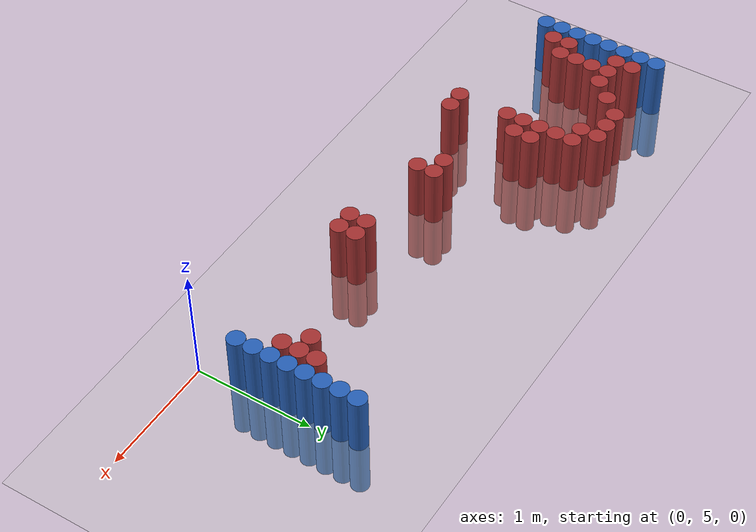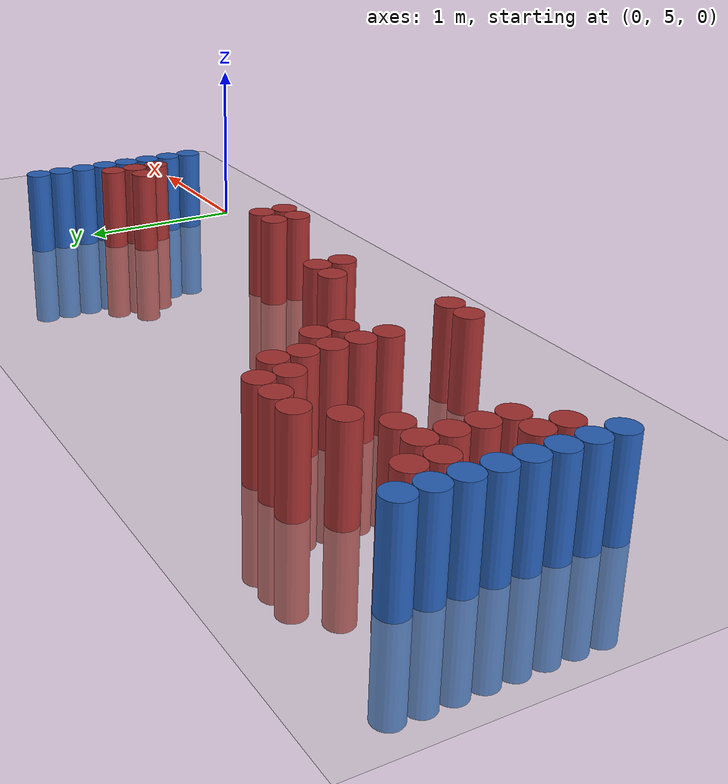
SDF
<sdf version="1.6">
 <world name="default">
  <model name="ground_plane">
   <static>1</static>
   <link name="link">
    <collision name="collision">
     <geometry><plane><normal>0 0 1</normal><size>100 100</size></plane></geometry>
     <surface><friction><ode><mu>100</mu><mu2>50</mu2></ode></friction></surface>
    </collision>
    <visual name="visual">
     <cast_shadows>0</cast_shadows>
     <geometry><plane><normal>0 0 1</normal><size>100 100</size></plane></geometry>
     <material>
      <script><uri>file://media/materials/scripts/gazebo.material</uri><name>Gazebo/Grey</name></script>
     </material>
    </visual>
   </link>
  </model>
  <model name="unit_cylinder_98">
   <static>1</static>
   <pose>-4.425000 5.475000 0.000000 0.000000 0.000000 0.000000</pose>
   <link name="link">
    <inertial>
     <mass>1</mass>
     <inertia><ixx>0.145833</ixx><ixy>0</ixy><ixz>0</ixz><iyy>0.145833</iyy><iyz>0</iyz><izz>0.125</izz></inertia>
    </inertial>
    <collision name="collision">
     <geometry><cylinder><radius>0.075000</radius><length>1</length></cylinder></geometry>
    </collision>
    <visual name="visual">
     <geometry><cylinder><radius>0.075000</radius><length>1</length></cylinder></geometry>
     <material>
      <ambient>0.152000 0.379000 0.720000 1</ambient>
      <diffuse>0.152000 0.379000 0.720000 1</diffuse>
     </material>
     <material>
      <script><name>Gazebo/Grey</name><uri>file://media/materials/scripts/gazebo.material</uri></script>
     </material>
    </visual>
   </link>
  </model>
  <model name="unit_cylinder_99">
   <static>1</static>
   <pose>-4.425000 5.625000 0.000000 0.000000 0.000000 0.000000</pose>
   <link name="link">
    <inertial>
     <mass>1</mass>
     <inertia><ixx>0.145833</ixx><ixy>0</ixy><ixz>0</ixz><iyy>0.145833</iyy><iyz>0</iyz><izz>0.125</izz></inertia>
    </inertial>
    <collision name="collision">
     <geometry><cylinder><radius>0.075000</radius><length>1</length></cylinder></geometry>
    </collision>
    <visual name="visual">
     <geometry><cylinder><radius>0.075000</radius><length>1</length></cylinder></geometry>
     <material>
      <ambient>0.152000 0.379000 0.720000 1</ambient>
      <diffuse>0.152000 0.379000 0.720000 1</diffuse>
     </material>
     <material>
      <script><name>Gazebo/Grey</name><uri>file://media/materials/scripts/gazebo.material</uri></script>
     </material>
    </visual>
   </link>
  </model>
  <model name="unit_cylinder_100">
   <static>1</static>
   <pose>-4.425000 5.775000 0.000000 0.000000 0.000000 0.000000</pose>
   <link name="link">
    <inertial>
     <mass>1</mass>
     <inertia><ixx>0.145833</ixx><ixy>0</ixy><ixz>0</ixz><iyy>0.145833</iyy><iyz>0</iyz><izz>0.125</izz></inertia>
    </inertial>
    <collision name="collision">
     <geometry><cylinder><radius>0.075000</radius><length>1</length></cylinder></geometry>
    </collision>
    <visual name="visual">
     <geometry><cylinder><radius>0.075000</radius><length>1</length></cylinder></geometry>
     <material>
      <ambient>0.152000 0.379000 0.720000 1</ambient>
      <diffuse>0.152000 0.379000 0.720000 1</diffuse>
     </material>
     <material>
      <script><name>Gazebo/Grey</name><uri>file://media/materials/scripts/gazebo.material</uri></script>
     </material>
    </visual>
   </link>
  </model>
  <model name="unit_cylinder_101">
   <static>1</static>
   <pose>-4.425000 5.925000 0.000000 0.000000 0.000000 0.000000</pose>
   <link name="link">
    <inertial>
     <mass>1</mass>
     <inertia><ixx>0.145833</ixx><ixy>0</ixy><ixz>0</ixz><iyy>0.145833</iyy><iyz>0</iyz><izz>0.125</izz></inertia>
    </inertial>
    <collision name="collision">
     <geometry><cylinder><radius>0.075000</radius><length>1</length></cylinder></geometry>
    </collision>
    <visual name="visual">
     <geometry><cylinder><radius>0.075000</radius><length>1</length></cylinder></geometry>
     <material>
      <ambient>0.152000 0.379000 0.720000 1</ambient>
      <diffuse>0.152000 0.379000 0.720000 1</diffuse>
     </material>
     <material>
      <script><name>Gazebo/Grey</name><uri>file://media/materials/scripts/gazebo.material</uri></script>
     </material>
    </visual>
   </link>
  </model>
  <model name="unit_cylinder_102">
   <static>1</static>
   <pose>-4.425000 6.075000 0.000000 0.000000 0.000000 0.000000</pose>
   <link name="link">
    <inertial>
     <mass>1</mass>
     <inertia><ixx>0.145833</ixx><ixy>0</ixy><ixz>0</ixz><iyy>0.145833</iyy><iyz>0</iyz><izz>0.125</izz></inertia>
    </inertial>
    <collision name="collision">
     <geometry><cylinder><radius>0.075000</radius><length>1</length></cylinder></geometry>
    </collision>
    <visual name="visual">
     <geometry><cylinder><radius>0.075000</radius><length>1</length></cylinder></geometry>
     <material>
      <ambient>0.152000 0.379000 0.720000 1</ambient>
      <diffuse>0.152000 0.379000 0.720000 1</diffuse>
     </material>
     <material>
      <script><name>Gazebo/Grey</name><uri>file://media/materials/scripts/gazebo.material</uri></script>
     </material>
    </visual>
   </link>
  </model>
  <model name="unit_cylinder_103">
   <static>1</static>
   <pose>-4.425000 6.225000 0.000000 0.000000 0.000000 0.000000</pose>
   <link name="link">
    <inertial>
     <mass>1</mass>
     <inertia><ixx>0.145833</ixx><ixy>0</ixy><ixz>0</ixz><iyy>0.145833</iyy><iyz>0</iyz><izz>0.125</izz></inertia>
    </inertial>
    <collision name="collision">
     <geometry><cylinder><radius>0.075000</radius><length>1</length></cylinder></geometry>
    </collision>
    <visual name="visual">
     <geometry><cylinder><radius>0.075000</radius><length>1</length></cylinder></geometry>
     <material>
      <ambient>0.152000 0.379000 0.720000 1</ambient>
      <diffuse>0.152000 0.379000 0.720000 1</diffuse>
     </material>
     <material>
      <script><name>Gazebo/Grey</name><uri>file://media/materials/scripts/gazebo.material</uri></script>
     </material>
    </visual>
   </link>
  </model>
  <model name="unit_cylinder_104">
   <static>1</static>
   <pose>-4.425000 6.375000 0.000000 0.000000 0.000000 0.000000</pose>
   <link name="link">
    <inertial>
     <mass>1</mass>
     <inertia><ixx>0.145833</ixx><ixy>0</ixy><ixz>0</ixz><iyy>0.145833</iyy><iyz>0</iyz><izz>0.125</izz></inertia>
    </inertial>
    <collision name="collision">
     <geometry><cylinder><radius>0.075000</radius><length>1</length></cylinder></geometry>
    </collision>
    <visual name="visual">
     <geometry><cylinder><radius>0.075000</radius><length>1</length></cylinder></geometry>
     <material>
      <ambient>0.152000 0.379000 0.720000 1</ambient>
      <diffuse>0.152000 0.379000 0.720000 1</diffuse>
     </material>
     <material>
      <script><name>Gazebo/Grey</name><uri>file://media/materials/scripts/gazebo.material</uri></script>
     </material>
    </visual>
   </link>
  </model>
  <model name="unit_cylinder_105">
   <static>1</static>
   <pose>-4.425000 6.525000 0.000000 0.000000 0.000000 0.000000</pose>
   <link name="link">
    <inertial>
     <mass>1</mass>
     <inertia><ixx>0.145833</ixx><ixy>0</ixy><ixz>0</ixz><iyy>0.145833</iyy><iyz>0</iyz><izz>0.125</izz></inertia>
    </inertial>
    <collision name="collision">
     <geometry><cylinder><radius>0.075000</radius><length>1</length></cylinder></geometry>
    </collision>
    <visual name="visual">
     <geometry><cylinder><radius>0.075000</radius><length>1</length></cylinder></geometry>
     <material>
      <ambient>0.152000 0.379000 0.720000 1</ambient>
      <diffuse>0.152000 0.379000 0.720000 1</diffuse>
     </material>
     <material>
      <script><name>Gazebo/Grey</name><uri>file://media/materials/scripts/gazebo.material</uri></script>
     </material>
    </visual>
   </link>
  </model>
  <model name="unit_cylinder_126">
   <static>1</static>
   <pose>-4.275000 5.625000 0.000000 0.000000 0.000000 0.000000</pose>
   <link name="link">
    <inertial>
     <mass>1</mass>
     <inertia><ixx>0.145833</ixx><ixy>0</ixy><ixz>0</ixz><iyy>0.145833</iyy><iyz>0</iyz><izz>0.125</izz></inertia>
    </inertial>
    <collision name="collision">
     <geometry><cylinder><radius>0.075000</radius><length>1</length></cylinder></geometry>
    </collision>
    <visual name="visual">
     <geometry><cylinder><radius>0.075000</radius><length>1</length></cylinder></geometry>
     <material>
      <ambient>0.648000 0.192000 0.192000 1</ambient>
      <diffuse>0.648000 0.192000 0.192000 1</diffuse>
     </material>
     <material>
      <script><name>Gazebo/Grey</name><uri>file://media/materials/scripts/gazebo.material</uri></script>
     </material>
    </visual>
   </link>
  </model>
  <model name="unit_cylinder_127">
   <static>1</static>
   <pose>-4.275000 5.775000 0.000000 0.000000 0.000000 0.000000</pose>
   <link name="link">
    <inertial>
     <mass>1</mass>
     <inertia><ixx>0.145833</ixx><ixy>0</ixy><ixz>0</ixz><iyy>0.145833</iyy><iyz>0</iyz><izz>0.125</izz></inertia>
    </inertial>
    <collision name="collision">
     <geometry><cylinder><radius>0.075000</radius><length>1</length></cylinder></geometry>
    </collision>
    <visual name="visual">
     <geometry><cylinder><radius>0.075000</radius><length>1</length></cylinder></geometry>
     <material>
      <ambient>0.648000 0.192000 0.192000 1</ambient>
      <diffuse>0.648000 0.192000 0.192000 1</diffuse>
     </material>
     <material>
      <script><name>Gazebo/Grey</name><uri>file://media/materials/scripts/gazebo.material</uri></script>
     </material>
    </visual>
   </link>
  </model>
  <model name="unit_cylinder_128">
   <static>1</static>
   <pose>-4.275000 6.225000 0.000000 0.000000 0.000000 0.000000</pose>
   <link name="link">
    <inertial>
     <mass>1</mass>
     <inertia><ixx>0.145833</ixx><ixy>0</ixy><ixz>0</ixz><iyy>0.145833</iyy><iyz>0</iyz><izz>0.125</izz></inertia>
    </inertial>
    <collision name="collision">
     <geometry><cylinder><radius>0.075000</radius><length>1</length></cylinder></geometry>
    </collision>
    <visual name="visual">
     <geometry><cylinder><radius>0.075000</radius><length>1</length></cylinder></geometry>
     <material>
      <ambient>0.648000 0.192000 0.192000 1</ambient>
      <diffuse>0.648000 0.192000 0.192000 1</diffuse>
     </material>
     <material>
      <script><name>Gazebo/Grey</name><uri>file://media/materials/scripts/gazebo.material</uri></script>
     </material>
    </visual>
   </link>
  </model>
  <model name="unit_cylinder_129">
   <static>1</static>
   <pose>-4.275000 6.375000 0.000000 0.000000 0.000000 0.000000</pose>
   <link name="link">
    <inertial>
     <mass>1</mass>
     <inertia><ixx>0.145833</ixx><ixy>0</ixy><ixz>0</ixz><iyy>0.145833</iyy><iyz>0</iyz><izz>0.125</izz></inertia>
    </inertial>
    <collision name="collision">
     <geometry><cylinder><radius>0.075000</radius><length>1</length></cylinder></geometry>
    </collision>
    <visual name="visual">
     <geometry><cylinder><radius>0.075000</radius><length>1</length></cylinder></geometry>
     <material>
      <ambient>0.648000 0.192000 0.192000 1</ambient>
      <diffuse>0.648000 0.192000 0.192000 1</diffuse>
     </material>
     <material>
      <script><name>Gazebo/Grey</name><uri>file://media/materials/scripts/gazebo.material</uri></script>
     </material>
    </visual>
   </link>
  </model>
  <model name="unit_cylinder_139">
   <static>1</static>
   <pose>-4.125000 5.775000 0.000000 0.000000 0.000000 0.000000</pose>
   <link name="link">
    <inertial>
     <mass>1</mass>
     <inertia><ixx>0.145833</ixx><ixy>0</ixy><ixz>0</ixz><iyy>0.145833</iyy><iyz>0</iyz><izz>0.125</izz></inertia>
    </inertial>
    <collision name="collision">
     <geometry><cylinder><radius>0.075000</radius><length>1</length></cylinder></geometry>
    </collision>
    <visual name="visual">
     <geometry><cylinder><radius>0.075000</radius><length>1</length></cylinder></geometry>
     <material>
      <ambient>0.648000 0.192000 0.192000 1</ambient>
      <diffuse>0.648000 0.192000 0.192000 1</diffuse>
     </material>
     <material>
      <script><name>Gazebo/Grey</name><uri>file://media/materials/scripts/gazebo.material</uri></script>
     </material>
    </visual>
   </link>
  </model>
  <model name="unit_cylinder_140">
   <static>1</static>
   <pose>-4.125000 5.925000 0.000000 0.000000 0.000000 0.000000</pose>
   <link name="link">
    <inertial>
     <mass>1</mass>
     <inertia><ixx>0.145833</ixx><ixy>0</ixy><ixz>0</ixz><iyy>0.145833</iyy><iyz>0</iyz><izz>0.125</izz></inertia>
    </inertial>
    <collision name="collision">
     <geometry><cylinder><radius>0.075000</radius><length>1</length></cylinder></geometry>
    </collision>
    <visual name="visual">
     <geometry><cylinder><radius>0.075000</radius><length>1</length></cylinder></geometry>
     <material>
      <ambient>0.648000 0.192000 0.192000 1</ambient>
      <diffuse>0.648000 0.192000 0.192000 1</diffuse>
     </material>
     <material>
      <script><name>Gazebo/Grey</name><uri>file://media/materials/scripts/gazebo.material</uri></script>
     </material>
    </visual>
   </link>
  </model>
  <model name="unit_cylinder_141">
   <static>1</static>
   <pose>-4.125000 6.075000 0.000000 0.000000 0.000000 0.000000</pose>
   <link name="link">
    <inertial>
     <mass>1</mass>
     <inertia><ixx>0.145833</ixx><ixy>0</ixy><ixz>0</ixz><iyy>0.145833</iyy><iyz>0</iyz><izz>0.125</izz></inertia>
    </inertial>
    <collision name="collision">
     <geometry><cylinder><radius>0.075000</radius><length>1</length></cylinder></geometry>
    </collision>
    <visual name="visual">
     <geometry><cylinder><radius>0.075000</radius><length>1</length></cylinder></geometry>
     <material>
      <ambient>0.648000 0.192000 0.192000 1</ambient>
      <diffuse>0.648000 0.192000 0.192000 1</diffuse>
     </material>
     <material>
      <script><name>Gazebo/Grey</name><uri>file://media/materials/scripts/gazebo.material</uri></script>
     </material>
    </visual>
   </link>
  </model>
  <model name="unit_cylinder_142">
   <static>1</static>
   <pose>-4.125000 6.225000 0.000000 0.000000 0.000000 0.000000</pose>
   <link name="link">
    <inertial>
     <mass>1</mass>
     <inertia><ixx>0.145833</ixx><ixy>0</ixy><ixz>0</ixz><iyy>0.145833</iyy><iyz>0</iyz><izz>0.125</izz></inertia>
    </inertial>
    <collision name="collision">
     <geometry><cylinder><radius>0.075000</radius><length>1</length></cylinder></geometry>
    </collision>
    <visual name="visual">
     <geometry><cylinder><radius>0.075000</radius><length>1</length></cylinder></geometry>
     <material>
      <ambient>0.648000 0.192000 0.192000 1</ambient>
      <diffuse>0.648000 0.192000 0.192000 1</diffuse>
     </material>
     <material>
      <script><name>Gazebo/Grey</name><uri>file://media/materials/scripts/gazebo.material</uri></script>
     </material>
    </visual>
   </link>
  </model>
  <model name="unit_cylinder_150">
   <static>1</static>
   <pose>-3.975000 6.225000 0.000000 0.000000 0.000000 0.000000</pose>
   <link name="link">
    <inertial>
     <mass>1</mass>
     <inertia><ixx>0.145833</ixx><ixy>0</ixy><ixz>0</ixz><iyy>0.145833</iyy><iyz>0</iyz><izz>0.125</izz></inertia>
    </inertial>
    <collision name="collision">
     <geometry><cylinder><radius>0.075000</radius><length>1</length></cylinder></geometry>
    </collision>
    <visual name="visual">
     <geometry><cylinder><radius>0.075000</radius><length>1</length></cylinder></geometry>
     <material>
      <ambient>0.648000 0.192000 0.192000 1</ambient>
      <diffuse>0.648000 0.192000 0.192000 1</diffuse>
     </material>
     <material>
      <script><name>Gazebo/Grey</name><uri>file://media/materials/scripts/gazebo.material</uri></script>
     </material>
    </visual>
   </link>
  </model>
  <model name="unit_cylinder_156">
   <static>1</static>
   <pose>-3.825000 6.375000 0.000000 0.000000 0.000000 0.000000</pose>
   <link name="link">
    <inertial>
     <mass>1</mass>
     <inertia><ixx>0.145833</ixx><ixy>0</ixy><ixz>0</ixz><iyy>0.145833</iyy><iyz>0</iyz><izz>0.125</izz></inertia>
    </inertial>
    <collision name="collision">
     <geometry><cylinder><radius>0.075000</radius><length>1</length></cylinder></geometry>
    </collision>
    <visual name="visual">
     <geometry><cylinder><radius>0.075000</radius><length>1</length></cylinder></geometry>
     <material>
      <ambient>0.648000 0.192000 0.192000 1</ambient>
      <diffuse>0.648000 0.192000 0.192000 1</diffuse>
     </material>
     <material>
      <script><name>Gazebo/Grey</name><uri>file://media/materials/scripts/gazebo.material</uri></script>
     </material>
    </visual>
   </link>
  </model>
  <model name="unit_cylinder_162">
   <static>1</static>
   <pose>-3.675000 6.525000 0.000000 0.000000 0.000000 0.000000</pose>
   <link name="link">
    <inertial>
     <mass>1</mass>
     <inertia><ixx>0.145833</ixx><ixy>0</ixy><ixz>0</ixz><iyy>0.145833</iyy><iyz>0</iyz><izz>0.125</izz></inertia>
    </inertial>
    <collision name="collision">
     <geometry><cylinder><radius>0.075000</radius><length>1</length></cylinder></geometry>
    </collision>
    <visual name="visual">
     <geometry><cylinder><radius>0.075000</radius><length>1</length></cylinder></geometry>
     <material>
      <ambient>0.648000 0.192000 0.192000 1</ambient>
      <diffuse>0.648000 0.192000 0.192000 1</diffuse>
     </material>
     <material>
      <script><name>Gazebo/Grey</name><uri>file://media/materials/scripts/gazebo.material</uri></script>
     </material>
    </visual>
   </link>
  </model>
  <model name="unit_cylinder_168">
   <static>1</static>
   <pose>-3.525000 6.525000 0.000000 0.000000 0.000000 0.000000</pose>
   <link name="link">
    <inertial>
     <mass>1</mass>
     <inertia><ixx>0.145833</ixx><ixy>0</ixy><ixz>0</ixz><iyy>0.145833</iyy><iyz>0</iyz><izz>0.125</izz></inertia>
    </inertial>
    <collision name="collision">
     <geometry><cylinder><radius>0.075000</radius><length>1</length></cylinder></geometry>
    </collision>
    <visual name="visual">
     <geometry><cylinder><radius>0.075000</radius><length>1</length></cylinder></geometry>
     <material>
      <ambient>0.648000 0.192000 0.192000 1</ambient>
      <diffuse>0.648000 0.192000 0.192000 1</diffuse>
     </material>
     <material>
      <script><name>Gazebo/Grey</name><uri>file://media/materials/scripts/gazebo.material</uri></script>
     </material>
    </visual>
   </link>
  </model>
  <model name="unit_cylinder_177">
   <static>1</static>
   <pose>-3.375000 6.375000 0.000000 0.000000 0.000000 0.000000</pose>
   <link name="link">
    <inertial>
     <mass>1</mass>
     <inertia><ixx>0.145833</ixx><ixy>0</ixy><ixz>0</ixz><iyy>0.145833</iyy><iyz>0</iyz><izz>0.125</izz></inertia>
    </inertial>
    <collision name="collision">
     <geometry><cylinder><radius>0.075000</radius><length>1</length></cylinder></geometry>
    </collision>
    <visual name="visual">
     <geometry><cylinder><radius>0.075000</radius><length>1</length></cylinder></geometry>
     <material>
      <ambient>0.648000 0.192000 0.192000 1</ambient>
      <diffuse>0.648000 0.192000 0.192000 1</diffuse>
     </material>
     <material>
      <script><name>Gazebo/Grey</name><uri>file://media/materials/scripts/gazebo.material</uri></script>
     </material>
    </visual>
   </link>
  </model>
  <model name="unit_cylinder_178">
   <static>1</static>
   <pose>-3.375000 6.525000 0.000000 0.000000 0.000000 0.000000</pose>
   <link name="link">
    <inertial>
     <mass>1</mass>
     <inertia><ixx>0.145833</ixx><ixy>0</ixy><ixz>0</ixz><iyy>0.145833</iyy><iyz>0</iyz><izz>0.125</izz></inertia>
    </inertial>
    <collision name="collision">
     <geometry><cylinder><radius>0.075000</radius><length>1</length></cylinder></geometry>
    </collision>
    <visual name="visual">
     <geometry><cylinder><radius>0.075000</radius><length>1</length></cylinder></geometry>
     <material>
      <ambient>0.648000 0.192000 0.192000 1</ambient>
      <diffuse>0.648000 0.192000 0.192000 1</diffuse>
     </material>
     <material>
      <script><name>Gazebo/Grey</name><uri>file://media/materials/scripts/gazebo.material</uri></script>
     </material>
    </visual>
   </link>
  </model>
  <model name="unit_cylinder_188">
   <static>1</static>
   <pose>-3.225000 5.325000 0.000000 0.000000 0.000000 0.000000</pose>
   <link name="link">
    <inertial>
     <mass>1</mass>
     <inertia><ixx>0.145833</ixx><ixy>0</ixy><ixz>0</ixz><iyy>0.145833</iyy><iyz>0</iyz><izz>0.125</izz></inertia>
    </inertial>
    <collision name="collision">
     <geometry><cylinder><radius>0.075000</radius><length>1</length></cylinder></geometry>
    </collision>
    <visual name="visual">
     <geometry><cylinder><radius>0.075000</radius><length>1</length></cylinder></geometry>
     <material>
      <ambient>0.648000 0.192000 0.192000 1</ambient>
      <diffuse>0.648000 0.192000 0.192000 1</diffuse>
     </material>
     <material>
      <script><name>Gazebo/Grey</name><uri>file://media/materials/scripts/gazebo.material</uri></script>
     </material>
    </visual>
   </link>
  </model>
  <model name="unit_cylinder_189">
   <static>1</static>
   <pose>-3.225000 5.775000 0.000000 0.000000 0.000000 0.000000</pose>
   <link name="link">
    <inertial>
     <mass>1</mass>
     <inertia><ixx>0.145833</ixx><ixy>0</ixy><ixz>0</ixz><iyy>0.145833</iyy><iyz>0</iyz><izz>0.125</izz></inertia>
    </inertial>
    <collision name="collision">
     <geometry><cylinder><radius>0.075000</radius><length>1</length></cylinder></geometry>
    </collision>
    <visual name="visual">
     <geometry><cylinder><radius>0.075000</radius><length>1</length></cylinder></geometry>
     <material>
      <ambient>0.648000 0.192000 0.192000 1</ambient>
      <diffuse>0.648000 0.192000 0.192000 1</diffuse>
     </material>
     <material>
      <script><name>Gazebo/Grey</name><uri>file://media/materials/scripts/gazebo.material</uri></script>
     </material>
    </visual>
   </link>
  </model>
  <model name="unit_cylinder_190">
   <static>1</static>
   <pose>-3.225000 5.925000 0.000000 0.000000 0.000000 0.000000</pose>
   <link name="link">
    <inertial>
     <mass>1</mass>
     <inertia><ixx>0.145833</ixx><ixy>0</ixy><ixz>0</ixz><iyy>0.145833</iyy><iyz>0</iyz><izz>0.125</izz></inertia>
    </inertial>
    <collision name="collision">
     <geometry><cylinder><radius>0.075000</radius><length>1</length></cylinder></geometry>
    </collision>
    <visual name="visual">
     <geometry><cylinder><radius>0.075000</radius><length>1</length></cylinder></geometry>
     <material>
      <ambient>0.648000 0.192000 0.192000 1</ambient>
      <diffuse>0.648000 0.192000 0.192000 1</diffuse>
     </material>
     <material>
      <script><name>Gazebo/Grey</name><uri>file://media/materials/scripts/gazebo.material</uri></script>
     </material>
    </visual>
   </link>
  </model>
  <model name="unit_cylinder_191">
   <static>1</static>
   <pose>-3.225000 6.075000 0.000000 0.000000 0.000000 0.000000</pose>
   <link name="link">
    <inertial>
     <mass>1</mass>
     <inertia><ixx>0.145833</ixx><ixy>0</ixy><ixz>0</ixz><iyy>0.145833</iyy><iyz>0</iyz><izz>0.125</izz></inertia>
    </inertial>
    <collision name="collision">
     <geometry><cylinder><radius>0.075000</radius><length>1</length></cylinder></geometry>
    </collision>
    <visual name="visual">
     <geometry><cylinder><radius>0.075000</radius><length>1</length></cylinder></geometry>
     <material>
      <ambient>0.648000 0.192000 0.192000 1</ambient>
      <diffuse>0.648000 0.192000 0.192000 1</diffuse>
     </material>
     <material>
      <script><name>Gazebo/Grey</name><uri>file://media/materials/scripts/gazebo.material</uri></script>
     </material>
    </visual>
   </link>
  </model>
  <model name="unit_cylinder_192">
   <static>1</static>
   <pose>-3.225000 6.225000 0.000000 0.000000 0.000000 0.000000</pose>
   <link name="link">
    <inertial>
     <mass>1</mass>
     <inertia><ixx>0.145833</ixx><ixy>0</ixy><ixz>0</ixz><iyy>0.145833</iyy><iyz>0</iyz><izz>0.125</izz></inertia>
    </inertial>
    <collision name="collision">
     <geometry><cylinder><radius>0.075000</radius><length>1</length></cylinder></geometry>
    </collision>
    <visual name="visual">
     <geometry><cylinder><radius>0.075000</radius><length>1</length></cylinder></geometry>
     <material>
      <ambient>0.648000 0.192000 0.192000 1</ambient>
      <diffuse>0.648000 0.192000 0.192000 1</diffuse>
     </material>
     <material>
      <script><name>Gazebo/Grey</name><uri>file://media/materials/scripts/gazebo.material</uri></script>
     </material>
    </visual>
   </link>
  </model>
  <model name="unit_cylinder_193">
   <static>1</static>
   <pose>-3.225000 6.375000 0.000000 0.000000 0.000000 0.000000</pose>
   <link name="link">
    <inertial>
     <mass>1</mass>
     <inertia><ixx>0.145833</ixx><ixy>0</ixy><ixz>0</ixz><iyy>0.145833</iyy><iyz>0</iyz><izz>0.125</izz></inertia>
    </inertial>
    <collision name="collision">
     <geometry><cylinder><radius>0.075000</radius><length>1</length></cylinder></geometry>
    </collision>
    <visual name="visual">
     <geometry><cylinder><radius>0.075000</radius><length>1</length></cylinder></geometry>
     <material>
      <ambient>0.648000 0.192000 0.192000 1</ambient>
      <diffuse>0.648000 0.192000 0.192000 1</diffuse>
     </material>
     <material>
      <script><name>Gazebo/Grey</name><uri>file://media/materials/scripts/gazebo.material</uri></script>
     </material>
    </visual>
   </link>
  </model>
  <model name="unit_cylinder_199">
   <static>1</static>
   <pose>-3.075000 5.325000 0.000000 0.000000 0.000000 0.000000</pose>
   <link name="link">
    <inertial>
     <mass>1</mass>
     <inertia><ixx>0.145833</ixx><ixy>0</ixy><ixz>0</ixz><iyy>0.145833</iyy><iyz>0</iyz><izz>0.125</izz></inertia>
    </inertial>
    <collision name="collision">
     <geometry><cylinder><radius>0.075000</radius><length>1</length></cylinder></geometry>
    </collision>
    <visual name="visual">
     <geometry><cylinder><radius>0.075000</radius><length>1</length></cylinder></geometry>
     <material>
      <ambient>0.648000 0.192000 0.192000 1</ambient>
      <diffuse>0.648000 0.192000 0.192000 1</diffuse>
     </material>
     <material>
      <script><name>Gazebo/Grey</name><uri>file://media/materials/scripts/gazebo.material</uri></script>
     </material>
    </visual>
   </link>
  </model>
  <model name="unit_cylinder_200">
   <static>1</static>
   <pose>-3.075000 5.925000 0.000000 0.000000 0.000000 0.000000</pose>
   <link name="link">
    <inertial>
     <mass>1</mass>
     <inertia><ixx>0.145833</ixx><ixy>0</ixy><ixz>0</ixz><iyy>0.145833</iyy><iyz>0</iyz><izz>0.125</izz></inertia>
    </inertial>
    <collision name="collision">
     <geometry><cylinder><radius>0.075000</radius><length>1</length></cylinder></geometry>
    </collision>
    <visual name="visual">
     <geometry><cylinder><radius>0.075000</radius><length>1</length></cylinder></geometry>
     <material>
      <ambient>0.648000 0.192000 0.192000 1</ambient>
      <diffuse>0.648000 0.192000 0.192000 1</diffuse>
     </material>
     <material>
      <script><name>Gazebo/Grey</name><uri>file://media/materials/scripts/gazebo.material</uri></script>
     </material>
    </visual>
   </link>
  </model>
  <model name="unit_cylinder_201">
   <static>1</static>
   <pose>-3.075000 6.075000 0.000000 0.000000 0.000000 0.000000</pose>
   <link name="link">
    <inertial>
     <mass>1</mass>
     <inertia><ixx>0.145833</ixx><ixy>0</ixy><ixz>0</ixz><iyy>0.145833</iyy><iyz>0</iyz><izz>0.125</izz></inertia>
    </inertial>
    <collision name="collision">
     <geometry><cylinder><radius>0.075000</radius><length>1</length></cylinder></geometry>
    </collision>
    <visual name="visual">
     <geometry><cylinder><radius>0.075000</radius><length>1</length></cylinder></geometry>
     <material>
      <ambient>0.648000 0.192000 0.192000 1</ambient>
      <diffuse>0.648000 0.192000 0.192000 1</diffuse>
     </material>
     <material>
      <script><name>Gazebo/Grey</name><uri>file://media/materials/scripts/gazebo.material</uri></script>
     </material>
    </visual>
   </link>
  </model>
  <model name="unit_cylinder_202">
   <static>1</static>
   <pose>-2.475000 5.625000 0.000000 0.000000 0.000000 0.000000</pose>
   <link name="link">
    <inertial>
     <mass>1</mass>
     <inertia><ixx>0.145833</ixx><ixy>0</ixy><ixz>0</ixz><iyy>0.145833</iyy><iyz>0</iyz><izz>0.125</izz></inertia>
    </inertial>
    <collision name="collision">
     <geometry><cylinder><radius>0.075000</radius><length>1</length></cylinder></geometry>
    </collision>
    <visual name="visual">
     <geometry><cylinder><radius>0.075000</radius><length>1</length></cylinder></geometry>
     <material>
      <ambient>0.648000 0.192000 0.192000 1</ambient>
      <diffuse>0.648000 0.192000 0.192000 1</diffuse>
     </material>
     <material>
      <script><name>Gazebo/Grey</name><uri>file://media/materials/scripts/gazebo.material</uri></script>
     </material>
    </visual>
   </link>
  </model>
  <model name="unit_cylinder_203">
   <static>1</static>
   <pose>-2.325000 5.475000 0.000000 0.000000 0.000000 0.000000</pose>
   <link name="link">
    <inertial>
     <mass>1</mass>
     <inertia><ixx>0.145833</ixx><ixy>0</ixy><ixz>0</ixz><iyy>0.145833</iyy><iyz>0</iyz><izz>0.125</izz></inertia>
    </inertial>
    <collision name="collision">
     <geometry><cylinder><radius>0.075000</radius><length>1</length></cylinder></geometry>
    </collision>
    <visual name="visual">
     <geometry><cylinder><radius>0.075000</radius><length>1</length></cylinder></geometry>
     <material>
      <ambient>0.648000 0.192000 0.192000 1</ambient>
      <diffuse>0.648000 0.192000 0.192000 1</diffuse>
     </material>
     <material>
      <script><name>Gazebo/Grey</name><uri>file://media/materials/scripts/gazebo.material</uri></script>
     </material>
    </visual>
   </link>
  </model>
  <model name="unit_cylinder_204">
   <static>1</static>
   <pose>-2.325000 5.625000 0.000000 0.000000 0.000000 0.000000</pose>
   <link name="link">
    <inertial>
     <mass>1</mass>
     <inertia><ixx>0.145833</ixx><ixy>0</ixy><ixz>0</ixz><iyy>0.145833</iyy><iyz>0</iyz><izz>0.125</izz></inertia>
    </inertial>
    <collision name="collision">
     <geometry><cylinder><radius>0.075000</radius><length>1</length></cylinder></geometry>
    </collision>
    <visual name="visual">
     <geometry><cylinder><radius>0.075000</radius><length>1</length></cylinder></geometry>
     <material>
      <ambient>0.648000 0.192000 0.192000 1</ambient>
      <diffuse>0.648000 0.192000 0.192000 1</diffuse>
     </material>
     <material>
      <script><name>Gazebo/Grey</name><uri>file://media/materials/scripts/gazebo.material</uri></script>
     </material>
    </visual>
   </link>
  </model>
  <model name="unit_cylinder_217">
   <static>1</static>
   <pose>-1.575000 5.325000 0.000000 0.000000 0.000000 0.000000</pose>
   <link name="link">
    <inertial>
     <mass>1</mass>
     <inertia><ixx>0.145833</ixx><ixy>0</ixy><ixz>0</ixz><iyy>0.145833</iyy><iyz>0</iyz><izz>0.125</izz></inertia>
    </inertial>
    <collision name="collision">
     <geometry><cylinder><radius>0.075000</radius><length>1</length></cylinder></geometry>
    </collision>
    <visual name="visual">
     <geometry><cylinder><radius>0.075000</radius><length>1</length></cylinder></geometry>
     <material>
      <ambient>0.648000 0.192000 0.192000 1</ambient>
      <diffuse>0.648000 0.192000 0.192000 1</diffuse>
     </material>
     <material>
      <script><name>Gazebo/Grey</name><uri>file://media/materials/scripts/gazebo.material</uri></script>
     </material>
    </visual>
   </link>
  </model>
  <model name="unit_cylinder_218">
   <static>1</static>
   <pose>-1.575000 5.475000 0.000000 0.000000 0.000000 0.000000</pose>
   <link name="link">
    <inertial>
     <mass>1</mass>
     <inertia><ixx>0.145833</ixx><ixy>0</ixy><ixz>0</ixz><iyy>0.145833</iyy><iyz>0</iyz><izz>0.125</izz></inertia>
    </inertial>
    <collision name="collision">
     <geometry><cylinder><radius>0.075000</radius><length>1</length></cylinder></geometry>
    </collision>
    <visual name="visual">
     <geometry><cylinder><radius>0.075000</radius><length>1</length></cylinder></geometry>
     <material>
      <ambient>0.648000 0.192000 0.192000 1</ambient>
      <diffuse>0.648000 0.192000 0.192000 1</diffuse>
     </material>
     <material>
      <script><name>Gazebo/Grey</name><uri>file://media/materials/scripts/gazebo.material</uri></script>
     </material>
    </visual>
   </link>
  </model>
  <model name="unit_cylinder_222">
   <static>1</static>
   <pose>-1.425000 5.325000 0.000000 0.000000 0.000000 0.000000</pose>
   <link name="link">
    <inertial>
     <mass>1</mass>
     <inertia><ixx>0.145833</ixx><ixy>0</ixy><ixz>0</ixz><iyy>0.145833</iyy><iyz>0</iyz><izz>0.125</izz></inertia>
    </inertial>
    <collision name="collision">
     <geometry><cylinder><radius>0.075000</radius><length>1</length></cylinder></geometry>
    </collision>
    <visual name="visual">
     <geometry><cylinder><radius>0.075000</radius><length>1</length></cylinder></geometry>
     <material>
      <ambient>0.648000 0.192000 0.192000 1</ambient>
      <diffuse>0.648000 0.192000 0.192000 1</diffuse>
     </material>
     <material>
      <script><name>Gazebo/Grey</name><uri>file://media/materials/scripts/gazebo.material</uri></script>
     </material>
    </visual>
   </link>
  </model>
  <model name="unit_cylinder_223">
   <static>1</static>
   <pose>-1.425000 5.475000 0.000000 0.000000 0.000000 0.000000</pose>
   <link name="link">
    <inertial>
     <mass>1</mass>
     <inertia><ixx>0.145833</ixx><ixy>0</ixy><ixz>0</ixz><iyy>0.145833</iyy><iyz>0</iyz><izz>0.125</izz></inertia>
    </inertial>
    <collision name="collision">
     <geometry><cylinder><radius>0.075000</radius><length>1</length></cylinder></geometry>
    </collision>
    <visual name="visual">
     <geometry><cylinder><radius>0.075000</radius><length>1</length></cylinder></geometry>
     <material>
      <ambient>0.648000 0.192000 0.192000 1</ambient>
      <diffuse>0.648000 0.192000 0.192000 1</diffuse>
     </material>
     <material>
      <script><name>Gazebo/Grey</name><uri>file://media/materials/scripts/gazebo.material</uri></script>
     </material>
    </visual>
   </link>
  </model>
  <model name="unit_cylinder_251">
   <static>1</static>
   <pose>-0.375000 5.775000 0.000000 0.000000 0.000000 0.000000</pose>
   <link name="link">
    <inertial>
     <mass>1</mass>
     <inertia><ixx>0.145833</ixx><ixy>0</ixy><ixz>0</ixz><iyy>0.145833</iyy><iyz>0</iyz><izz>0.125</izz></inertia>
    </inertial>
    <collision name="collision">
     <geometry><cylinder><radius>0.075000</radius><length>1</length></cylinder></geometry>
    </collision>
    <visual name="visual">
     <geometry><cylinder><radius>0.075000</radius><length>1</length></cylinder></geometry>
     <material>
      <ambient>0.648000 0.192000 0.192000 1</ambient>
      <diffuse>0.648000 0.192000 0.192000 1</diffuse>
     </material>
     <material>
      <script><name>Gazebo/Grey</name><uri>file://media/materials/scripts/gazebo.material</uri></script>
     </material>
    </visual>
   </link>
  </model>
  <model name="unit_cylinder_261">
   <static>1</static>
   <pose>-0.225000 5.625000 0.000000 0.000000 0.000000 0.000000</pose>
   <link name="link">
    <inertial>
     <mass>1</mass>
     <inertia><ixx>0.145833</ixx><ixy>0</ixy><ixz>0</ixz><iyy>0.145833</iyy><iyz>0</iyz><izz>0.125</izz></inertia>
    </inertial>
    <collision name="collision">
     <geometry><cylinder><radius>0.075000</radius><length>1</length></cylinder></geometry>
    </collision>
    <visual name="visual">
     <geometry><cylinder><radius>0.075000</radius><length>1</length></cylinder></geometry>
     <material>
      <ambient>0.648000 0.192000 0.192000 1</ambient>
      <diffuse>0.648000 0.192000 0.192000 1</diffuse>
     </material>
     <material>
      <script><name>Gazebo/Grey</name><uri>file://media/materials/scripts/gazebo.material</uri></script>
     </material>
    </visual>
   </link>
  </model>
  <model name="unit_cylinder_262">
   <static>1</static>
   <pose>-0.225000 5.775000 0.000000 0.000000 0.000000 0.000000</pose>
   <link name="link">
    <inertial>
     <mass>1</mass>
     <inertia><ixx>0.145833</ixx><ixy>0</ixy><ixz>0</ixz><iyy>0.145833</iyy><iyz>0</iyz><izz>0.125</izz></inertia>
    </inertial>
    <collision name="collision">
     <geometry><cylinder><radius>0.075000</radius><length>1</length></cylinder></geometry>
    </collision>
    <visual name="visual">
     <geometry><cylinder><radius>0.075000</radius><length>1</length></cylinder></geometry>
     <material>
      <ambient>0.648000 0.192000 0.192000 1</ambient>
      <diffuse>0.648000 0.192000 0.192000 1</diffuse>
     </material>
     <material>
      <script><name>Gazebo/Grey</name><uri>file://media/materials/scripts/gazebo.material</uri></script>
     </material>
    </visual>
   </link>
  </model>
  <model name="unit_cylinder_263">
   <static>1</static>
   <pose>-0.225000 5.925000 0.000000 0.000000 0.000000 0.000000</pose>
   <link name="link">
    <inertial>
     <mass>1</mass>
     <inertia><ixx>0.145833</ixx><ixy>0</ixy><ixz>0</ixz><iyy>0.145833</iyy><iyz>0</iyz><izz>0.125</izz></inertia>
    </inertial>
    <collision name="collision">
     <geometry><cylinder><radius>0.075000</radius><length>1</length></cylinder></geometry>
    </collision>
    <visual name="visual">
     <geometry><cylinder><radius>0.075000</radius><length>1</length></cylinder></geometry>
     <material>
      <ambient>0.648000 0.192000 0.192000 1</ambient>
      <diffuse>0.648000 0.192000 0.192000 1</diffuse>
     </material>
     <material>
      <script><name>Gazebo/Grey</name><uri>file://media/materials/scripts/gazebo.material</uri></script>
     </material>
    </visual>
   </link>
  </model>
  <model name="unit_cylinder_271">
   <static>1</static>
   <pose>-0.075000 5.325000 0.000000 0.000000 0.000000 0.000000</pose>
   <link name="link">
    <inertial>
     <mass>1</mass>
     <inertia><ixx>0.145833</ixx><ixy>0</ixy><ixz>0</ixz><iyy>0.145833</iyy><iyz>0</iyz><izz>0.125</izz></inertia>
    </inertial>
    <collision name="collision">
     <geometry><cylinder><radius>0.075000</radius><length>1</length></cylinder></geometry>
    </collision>
    <visual name="visual">
     <geometry><cylinder><radius>0.075000</radius><length>1</length></cylinder></geometry>
     <material>
      <ambient>0.152000 0.379000 0.720000 1</ambient>
      <diffuse>0.152000 0.379000 0.720000 1</diffuse>
     </material>
     <material>
      <script><name>Gazebo/Grey</name><uri>file://media/materials/scripts/gazebo.material</uri></script>
     </material>
    </visual>
   </link>
  </model>
  <model name="unit_cylinder_272">
   <static>1</static>
   <pose>-0.075000 5.475000 0.000000 0.000000 0.000000 0.000000</pose>
   <link name="link">
    <inertial>
     <mass>1</mass>
     <inertia><ixx>0.145833</ixx><ixy>0</ixy><ixz>0</ixz><iyy>0.145833</iyy><iyz>0</iyz><izz>0.125</izz></inertia>
    </inertial>
    <collision name="collision">
     <geometry><cylinder><radius>0.075000</radius><length>1</length></cylinder></geometry>
    </collision>
    <visual name="visual">
     <geometry><cylinder><radius>0.075000</radius><length>1</length></cylinder></geometry>
     <material>
      <ambient>0.152000 0.379000 0.720000 1</ambient>
      <diffuse>0.152000 0.379000 0.720000 1</diffuse>
     </material>
     <material>
      <script><name>Gazebo/Grey</name><uri>file://media/materials/scripts/gazebo.material</uri></script>
     </material>
    </visual>
   </link>
  </model>
  <model name="unit_cylinder_273">
   <static>1</static>
   <pose>-0.075000 5.625000 0.000000 0.000000 0.000000 0.000000</pose>
   <link name="link">
    <inertial>
     <mass>1</mass>
     <inertia><ixx>0.145833</ixx><ixy>0</ixy><ixz>0</ixz><iyy>0.145833</iyy><iyz>0</iyz><izz>0.125</izz></inertia>
    </inertial>
    <collision name="collision">
     <geometry><cylinder><radius>0.075000</radius><length>1</length></cylinder></geometry>
    </collision>
    <visual name="visual">
     <geometry><cylinder><radius>0.075000</radius><length>1</length></cylinder></geometry>
     <material>
      <ambient>0.152000 0.379000 0.720000 1</ambient>
      <diffuse>0.152000 0.379000 0.720000 1</diffuse>
     </material>
     <material>
      <script><name>Gazebo/Grey</name><uri>file://media/materials/scripts/gazebo.material</uri></script>
     </material>
    </visual>
   </link>
  </model>
  <model name="unit_cylinder_274">
   <static>1</static>
   <pose>-0.075000 5.775000 0.000000 0.000000 0.000000 0.000000</pose>
   <link name="link">
    <inertial>
     <mass>1</mass>
     <inertia><ixx>0.145833</ixx><ixy>0</ixy><ixz>0</ixz><iyy>0.145833</iyy><iyz>0</iyz><izz>0.125</izz></inertia>
    </inertial>
    <collision name="collision">
     <geometry><cylinder><radius>0.075000</radius><length>1</length></cylinder></geometry>
    </collision>
    <visual name="visual">
     <geometry><cylinder><radius>0.075000</radius><length>1</length></cylinder></geometry>
     <material>
      <ambient>0.152000 0.379000 0.720000 1</ambient>
      <diffuse>0.152000 0.379000 0.720000 1</diffuse>
     </material>
     <material>
      <script><name>Gazebo/Grey</name><uri>file://media/materials/scripts/gazebo.material</uri></script>
     </material>
    </visual>
   </link>
  </model>
  <model name="unit_cylinder_275">
   <static>1</static>
   <pose>-0.075000 5.925000 0.000000 0.000000 0.000000 0.000000</pose>
   <link name="link">
    <inertial>
     <mass>1</mass>
     <inertia><ixx>0.145833</ixx><ixy>0</ixy><ixz>0</ixz><iyy>0.145833</iyy><iyz>0</iyz><izz>0.125</izz></inertia>
    </inertial>
    <collision name="collision">
     <geometry><cylinder><radius>0.075000</radius><length>1</length></cylinder></geometry>
    </collision>
    <visual name="visual">
     <geometry><cylinder><radius>0.075000</radius><length>1</length></cylinder></geometry>
     <material>
      <ambient>0.152000 0.379000 0.720000 1</ambient>
      <diffuse>0.152000 0.379000 0.720000 1</diffuse>
     </material>
     <material>
      <script><name>Gazebo/Grey</name><uri>file://media/materials/scripts/gazebo.material</uri></script>
     </material>
    </visual>
   </link>
  </model>
  <model name="unit_cylinder_276">
   <static>1</static>
   <pose>-0.075000 6.075000 0.000000 0.000000 0.000000 0.000000</pose>
   <link name="link">
    <inertial>
     <mass>1</mass>
     <inertia><ixx>0.145833</ixx><ixy>0</ixy><ixz>0</ixz><iyy>0.145833</iyy><iyz>0</iyz><izz>0.125</izz></inertia>
    </inertial>
    <collision name="collision">
     <geometry><cylinder><radius>0.075000</radius><length>1</length></cylinder></geometry>
    </collision>
    <visual name="visual">
     <geometry><cylinder><radius>0.075000</radius><length>1</length></cylinder></geometry>
     <material>
      <ambient>0.152000 0.379000 0.720000 1</ambient>
      <diffuse>0.152000 0.379000 0.720000 1</diffuse>
     </material>
     <material>
      <script><name>Gazebo/Grey</name><uri>file://media/materials/scripts/gazebo.material</uri></script>
     </material>
    </visual>
   </link>
  </model>
  <model name="unit_cylinder_277">
   <static>1</static>
   <pose>-0.075000 6.225000 0.000000 0.000000 0.000000 0.000000</pose>
   <link name="link">
    <inertial>
     <mass>1</mass>
     <inertia><ixx>0.145833</ixx><ixy>0</ixy><ixz>0</ixz><iyy>0.145833</iyy><iyz>0</iyz><izz>0.125</izz></inertia>
    </inertial>
    <collision name="collision">
     <geometry><cylinder><radius>0.075000</radius><length>1</length></cylinder></geometry>
    </collision>
    <visual name="visual">
     <geometry><cylinder><radius>0.075000</radius><length>1</length></cylinder></geometry>
     <material>
      <ambient>0.152000 0.379000 0.720000 1</ambient>
      <diffuse>0.152000 0.379000 0.720000 1</diffuse>
     </material>
     <material>
      <script><name>Gazebo/Grey</name><uri>file://media/materials/scripts/gazebo.material</uri></script>
     </material>
    </visual>
   </link>
  </model>
  <model name="unit_cylinder_278">
   <static>1</static>
   <pose>-0.075000 6.375000 0.000000 0.000000 0.000000 0.000000</pose>
   <link name="link">
    <inertial>
     <mass>1</mass>
     <inertia><ixx>0.145833</ixx><ixy>0</ixy><ixz>0</ixz><iyy>0.145833</iyy><iyz>0</iyz><izz>0.125</izz></inertia>
    </inertial>
    <collision name="collision">
     <geometry><cylinder><radius>0.075000</radius><length>1</length></cylinder></geometry>
    </collision>
    <visual name="visual">
     <geometry><cylinder><radius>0.075000</radius><length>1</length></cylinder></geometry>
     <material>
      <ambient>0.152000 0.379000 0.720000 1</ambient>
      <diffuse>0.152000 0.379000 0.720000 1</diffuse>
     </material>
     <material>
      <script><name>Gazebo/Grey</name><uri>file://media/materials/scripts/gazebo.material</uri></script>
     </material>
    </visual>
   </link>
  </model>
 </world>
</sdf>
